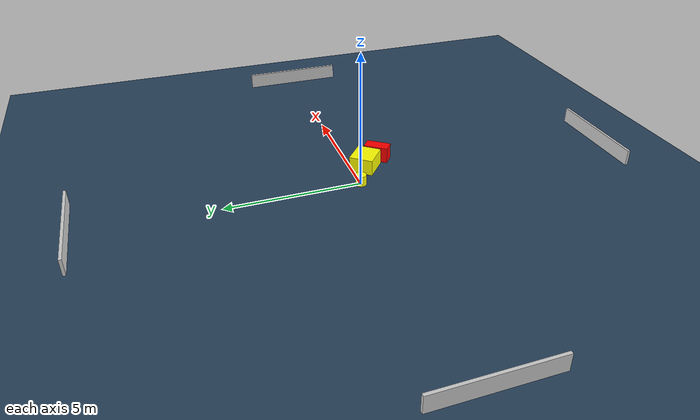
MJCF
<?xml version="1.0" ?>
<mujoco model="generated_environment">
  <option timestep="0.01" integrator="RK4" cone="elliptic"/>
  <default>
    <geom density="1"/>
  </default>
  <asset>
    <texture builtin="gradient" height="3072" name="skybox" rgb1="0.3 0.5 0.7" rgb2="0 0 0" type="skybox" width="512"/>
    <texture builtin="checker" height="300" name="groundplane" rgb1="0.2 0.3 0.4" rgb2="0.1 0.2 0.3" type="2d" width="300"/>
    <material name="groundplane" reflectance="0.2" texrepeat="5 5" texture="groundplane"/>
  </asset>
  <worldbody>
    <light dir="0 0 -1" directional="true" pos="0 0 1.5"/>
    <geom condim="3" friction="0.5 0.005 0.001" material="groundplane" name="floor" pos="0 0 0" size="0 0 0.05" type="plane"/>
    <body name="walls">
      <geom name="wall_1" condim="4" pos="-10.0 0.0 0.3" rgba="0.800000011920929 0.800000011920929 0.800000011920929 1.0" size="0.05 2.0 0.3" type="box"/>
      <geom name="wall_2" condim="4" pos="10.0 0.0 0.3" rgba="0.800000011920929 0.800000011920929 0.800000011920929 1.0" size="0.05 2.0 0.3" type="box"/>
      <geom name="wall_3" condim="4" pos="0.0 -10.0 0.3" rgba="0.800000011920929 0.800000011920929 0.800000011920929 1.0" size="2.0 0.05 0.3" type="box"/>
      <geom name="wall_4" condim="4" pos="0.0 10.0 0.3" rgba="0.800000011920929 0.800000011920929 0.800000011920929 1.0" size="2.0 0.05 0.3" type="box"/>
    </body>
    <body name="robot">
      <joint name="joint_x" type="slide" pos="0 0 0" axis="1 0 0"/>
      <joint name="joint_y" type="slide" pos="0 0 0" axis="0 1 0"/>
      <geom name="robot" type="cylinder" pos="0.0 0.0 0.2" size="0.2 0.2 0.0" mass="5.0" friction="1.0 0.005 0.0001" condim="4" rgba="1.0 1.0 0.0 1.0"/>
    </body>
    <body name="obstacle_1_movable">
      <geom name="obstacle_1_movable" condim="4" pos="1.0950267224513912 -0.546893170367525 0.3" euler="0 0 231.05358498246696" friction="0.0 0.005 0.001" rgba="1.0 1.0 0.0 1.0" size="0.4475523677914634 0.49792585360784997 0.3" type="box" mass="0.1"/>
      <joint type="free"/>
    </body>
    <body name="obstacle_2_static">
      <geom name="obstacle_2_static" condim="4" pos="1.5904126894339865 -1.2107458791466035 0.3" euler="0 0 52.96452469477792" friction="0.0 0.005 0.001" rgba="1.0 0.0 0.0 1.0" size="0.45868196064505884 0.23324477732234639 0.3" type="box"/>
    </body>
  </worldbody>
  <actuator>
    <motor name="actuator_x" joint="joint_x" gear="1" ctrlrange="-1 1"/>
    <motor name="actuator_y" joint="joint_y" gear="1" ctrlrange="-1 1"/>
  </actuator>
</mujoco>
